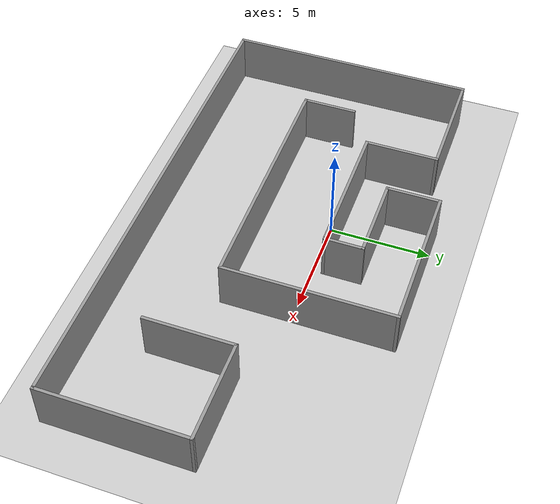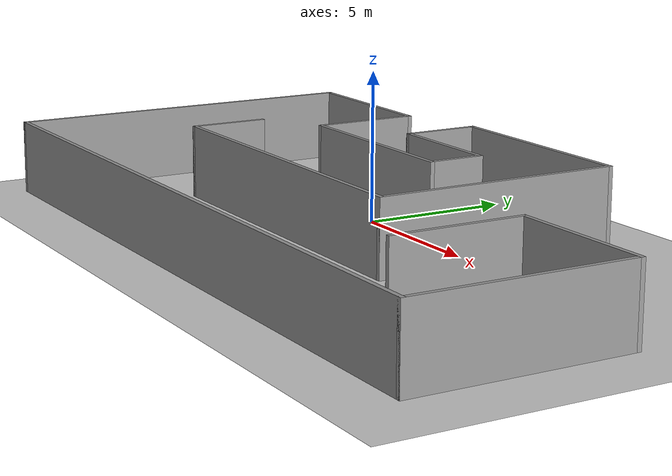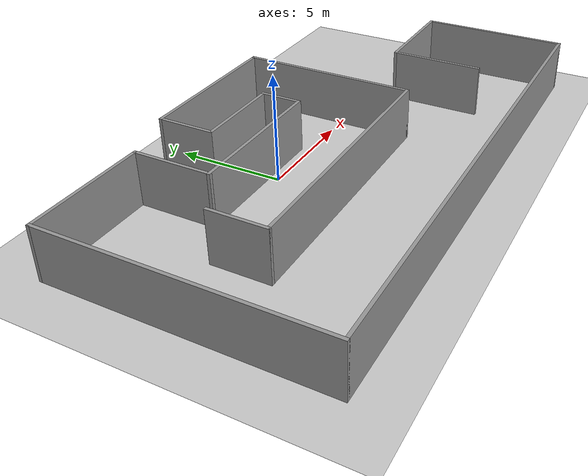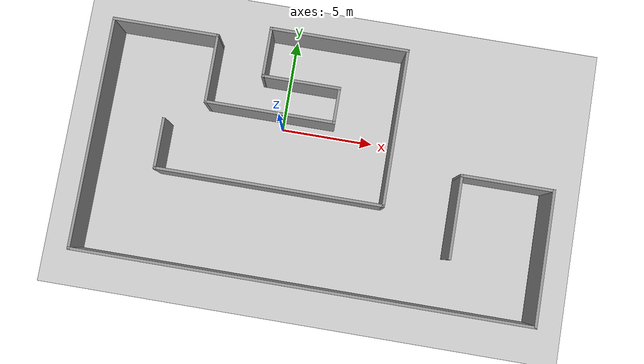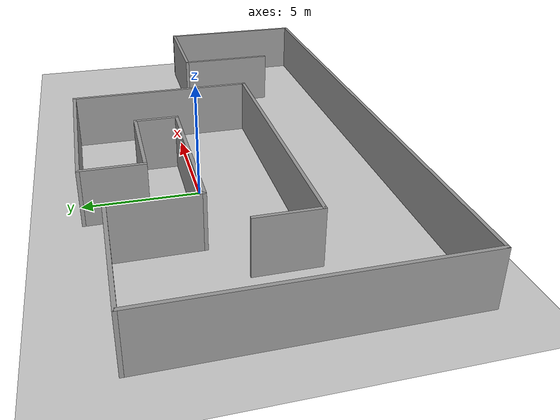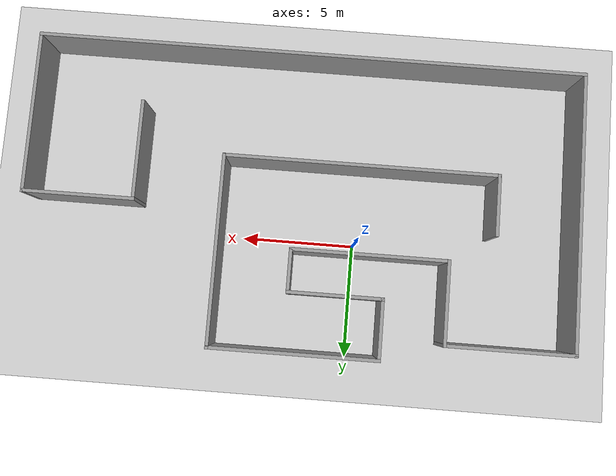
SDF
<sdf version="1.7">
 <world name="default">
  <light name="sun" type="directional">
   <pose>0 0 10 0 -0 0</pose>
   <diffuse>0.8 0.8 0.8 1</diffuse>
   <specular>0.2 0.2 0.2 1</specular>
   <attenuation>
    <range>1000</range>
    <constant>0.9</constant>
    <linear>0.01</linear>
    <quadratic>0.001</quadratic>
   </attenuation>
   <direction>-0.5 0.1 -0.9</direction>
   <spot><inner_angle>0</inner_angle><outer_angle>0</outer_angle><falloff>0</falloff></spot>
  </light>
  <model name="ground_plane">
   <static>1</static>
   <link name="link">
    <collision name="collision">
     <geometry><plane><normal>0 0 1</normal><size>100 100</size></plane></geometry>
     <surface>
      <contact><collide_bitmask>65535</collide_bitmask></contact>
      <friction><ode><mu>100</mu><mu2>50</mu2></ode></friction>
     </surface>
    </collision>
    <visual name="visual">
     <cast_shadows>0</cast_shadows>
     <geometry><plane><normal>0 0 1</normal><size>100 100</size></plane></geometry>
     <material>
      <script><uri>file://media/materials/scripts/gazebo.material</uri><name>Gazebo/Grey</name></script>
     </material>
    </visual>
   </link>
  </model>
  <gravity>0 0 -9.8</gravity>
  <magnetic_field>6e-06 2.3e-05 -4.2e-05</magnetic_field>
  <atmosphere type="adiabatic"/>
  <physics type="ode">
   <max_step_size>0.001</max_step_size>
   <real_time_factor>1</real_time_factor>
   <real_time_update_rate>1000</real_time_update_rate>
  </physics>
  <scene><ambient>0.4 0.4 0.4 1</ambient><background>0.7 0.7 0.7 1</background><shadows>1</shadows></scene>
  <spherical_coordinates>
   <surface_model>EARTH_WGS84</surface_model>
   <latitude_deg>0</latitude_deg>
   <longitude_deg>0</longitude_deg>
   <elevation>0</elevation>
   <heading_deg>0</heading_deg>
  </spherical_coordinates>
  <model name="Untitled">
   <pose>2.455 -1.68 0 0 -0 0</pose>
   <link name="Wall_0">
    <collision name="Wall_0_Collision">
     <geometry><box><size>2.75 0.15 2.5</size></box></geometry>
     <pose>0 0 1.25 0 -0 0</pose>
    </collision>
    <visual name="Wall_0_Visual">
     <pose>0 0 1.25 0 -0 0</pose>
     <geometry><box><size>2.75 0.15 2.5</size></box></geometry>
     <material>
      <script><uri>file://media/materials/scripts/gazebo.material</uri><name>Gazebo/Grey</name></script>
      <ambient>1 1 1 1</ambient>
     </material>
     <meta><layer>0</layer></meta>
    </visual>
    <pose>-8.575 -0.45 0 0 -0 -1.5708</pose>
   </link>
   <link name="Wall_1">
    <collision name="Wall_1_Collision">
     <geometry><box><size>12.25 0.15 2.5</size></box></geometry>
     <pose>0 0 1.25 0 -0 0</pose>
    </collision>
    <visual name="Wall_1_Visual">
     <pose>0 0 1.25 0 -0 0</pose>
     <geometry><box><size>12.25 0.15 2.5</size></box></geometry>
     <material>
      <script><uri>file://media/materials/scripts/gazebo.material</uri><name>Gazebo/Grey</name></script>
      <ambient>1 1 1 1</ambient>
     </material>
     <meta><layer>0</layer></meta>
    </visual>
    <pose>-2.525 -1.75 0 0 -0 0</pose>
   </link>
   <link name="Wall_10">
    <collision name="Wall_10_Collision">
     <geometry><box><size>12.5 0.15 2.5</size></box></geometry>
     <pose>0 0 1.25 0 -0 0</pose>
    </collision>
    <visual name="Wall_10_Visual">
     <pose>0 0 1.25 0 -0 0</pose>
     <geometry><box><size>12.5 0.15 2.5</size></box></geometry>
     <material>
      <script><uri>file://media/materials/scripts/gazebo.material</uri><name>Gazebo/Grey</name></script>
      <ambient>1 1 1 1</ambient>
     </material>
     <meta><layer>0</layer></meta>
    </visual>
    <pose>-12.175 -0.424999 0 0 -0 -1.5708</pose>
   </link>
   <link name="Wall_11">
    <collision name="Wall_11_Collision">
     <geometry><box><size>24.5 0.15 2.5</size></box></geometry>
     <pose>0 0 1.25 0 -0 0</pose>
    </collision>
    <visual name="Wall_11_Visual">
     <pose>0 0 1.25 0 -0 0</pose>
     <geometry><box><size>24.5 0.15 2.5</size></box></geometry>
     <material>
      <script><uri>file://media/materials/scripts/gazebo.material</uri><name>Gazebo/Grey</name></script>
      <ambient>1 1 1 1</ambient>
     </material>
     <meta><layer>0</layer></meta>
    </visual>
    <pose>0 -6.6 0 0 -0 0</pose>
   </link>
   <link name="Wall_12">
    <collision name="Wall_12_Collision">
     <geometry><box><size>7.25 0.15 2.5</size></box></geometry>
     <pose>0 0 1.25 0 -0 0</pose>
    </collision>
    <visual name="Wall_12_Visual">
     <pose>0 0 1.25 0 -0 0</pose>
     <geometry><box><size>7.25 0.15 2.5</size></box></geometry>
     <material>
      <script><uri>file://media/materials/scripts/gazebo.material</uri><name>Gazebo/Grey</name></script>
      <ambient>1 1 1 1</ambient>
     </material>
     <meta><layer>0</layer></meta>
    </visual>
    <pose>12.175 -3.05 0 0 -0 1.5708</pose>
   </link>
   <link name="Wall_13">
    <collision name="Wall_13_Collision">
     <geometry><box><size>5 0.15 2.5</size></box></geometry>
     <pose>0 0 1.25 0 -0 0</pose>
    </collision>
    <visual name="Wall_13_Visual">
     <pose>0 0 1.25 0 -0 0</pose>
     <geometry><box><size>5 0.15 2.5</size></box></geometry>
     <material>
      <script><uri>file://media/materials/scripts/gazebo.material</uri><name>Gazebo/Grey</name></script>
      <ambient>1 1 1 1</ambient>
     </material>
     <meta><layer>0</layer></meta>
    </visual>
    <pose>9.75 0.500001 0 0 -0 3.14159</pose>
   </link>
   <link name="Wall_14">
    <collision name="Wall_14_Collision">
     <geometry><box><size>4.5 0.15 2.5</size></box></geometry>
     <pose>0 0 1.25 0 -0 0</pose>
    </collision>
    <visual name="Wall_14_Visual">
     <pose>0 0 1.25 0 -0 0</pose>
     <geometry><box><size>4.5 0.15 2.5</size></box></geometry>
     <material>
      <script><uri>file://media/materials/scripts/gazebo.material</uri><name>Gazebo/Grey</name></script>
      <ambient>1 1 1 1</ambient>
     </material>
     <meta><layer>0</layer></meta>
    </visual>
    <pose>7.325 -1.675 0 0 -0 -1.5708</pose>
   </link>
   <link name="Wall_2">
    <collision name="Wall_2_Collision">
     <geometry><box><size>8.5 0.15 2.5</size></box></geometry>
     <pose>0 0 1.25 0 -0 0</pose>
    </collision>
    <visual name="Wall_2_Visual">
     <pose>0 0 1.25 0 -0 0</pose>
     <geometry><box><size>8.5 0.15 2.5</size></box></geometry>
     <material>
      <script><uri>file://media/materials/scripts/gazebo.material</uri><name>Gazebo/Grey</name></script>
      <ambient>1 1 1 1</ambient>
     </material>
     <meta><layer>0</layer></meta>
    </visual>
    <pose>3.525 2.425 0 0 -0 1.5708</pose>
   </link>
   <link name="Wall_3">
    <collision name="Wall_3_Collision">
     <geometry><box><size>7.5 0.15 2.5</size></box></geometry>
     <pose>0 0 1.25 0 -0 0</pose>
    </collision>
    <visual name="Wall_3_Visual">
     <pose>0 0 1.25 0 -0 0</pose>
     <geometry><box><size>7.5 0.15 2.5</size></box></geometry>
     <material>
      <script><uri>file://media/materials/scripts/gazebo.material</uri><name>Gazebo/Grey</name></script>
      <ambient>1 1 1 1</ambient>
     </material>
     <meta><layer>0</layer></meta>
    </visual>
    <pose>-0.15 6.6 0 0 -0 3.14159</pose>
   </link>
   <link name="Wall_4">
    <collision name="Wall_4_Collision">
     <geometry><box><size>2.75 0.15 2.5</size></box></geometry>
     <pose>0 0 1.25 0 -0 0</pose>
    </collision>
    <visual name="Wall_4_Visual">
     <pose>0 0 1.25 0 -0 0</pose>
     <geometry><box><size>2.75 0.15 2.5</size></box></geometry>
     <material>
      <script><uri>file://media/materials/scripts/gazebo.material</uri><name>Gazebo/Grey</name></script>
      <ambient>1 1 1 1</ambient>
     </material>
     <meta><layer>0</layer></meta>
    </visual>
    <pose>-3.825 5.3 0 0 -0 -1.5708</pose>
   </link>
   <link name="Wall_5">
    <collision name="Wall_5_Collision">
     <geometry><box><size>4.25 0.15 2.5</size></box></geometry>
     <pose>0 0 1.25 0 -0 0</pose>
    </collision>
    <visual name="Wall_5_Visual">
     <pose>0 0 1.25 0 -0 0</pose>
     <geometry><box><size>4.25 0.15 2.5</size></box></geometry>
     <material>
      <script><uri>file://media/materials/scripts/gazebo.material</uri><name>Gazebo/Grey</name></script>
      <ambient>1 1 1 1</ambient>
     </material>
     <meta><layer>0</layer></meta>
    </visual>
    <pose>-1.775 4 0 0 -0 0</pose>
   </link>
   <link name="Wall_6">
    <collision name="Wall_6_Collision">
     <geometry><box><size>2 0.15 2.5</size></box></geometry>
     <pose>0 0 1.25 0 -0 0</pose>
    </collision>
    <visual name="Wall_6_Visual">
     <pose>0 0 1.25 0 -0 0</pose>
     <geometry><box><size>2 0.15 2.5</size></box></geometry>
     <material>
      <script><uri>file://media/materials/scripts/gazebo.material</uri><name>Gazebo/Grey</name></script>
      <ambient>1 1 1 1</ambient>
     </material>
     <meta><layer>0</layer></meta>
    </visual>
    <pose>0.275 3.075 0 0 -0 -1.5708</pose>
   </link>
   <link name="Wall_7">
    <collision name="Wall_7_Collision">
     <geometry><box><size>7 0.15 2.5</size></box></geometry>
     <pose>0 0 1.25 0 -0 0</pose>
    </collision>
    <visual name="Wall_7_Visual">
     <pose>0 0 1.25 0 -0 0</pose>
     <geometry><box><size>7 0.15 2.5</size></box></geometry>
     <material>
      <script><uri>file://media/materials/scripts/gazebo.material</uri><name>Gazebo/Grey</name></script>
      <ambient>1 1 1 1</ambient>
     </material>
     <meta><layer>0</layer></meta>
    </visual>
    <pose>-3.15 2.15 0 0 -0 3.14159</pose>
   </link>
   <link name="Wall_8">
    <collision name="Wall_8_Collision">
     <geometry><box><size>3.75 0.15 2.5</size></box></geometry>
     <pose>0 0 1.25 0 -0 0</pose>
    </collision>
    <visual name="Wall_8_Visual">
     <pose>0 0 1.25 0 -0 0</pose>
     <geometry><box><size>3.75 0.15 2.5</size></box></geometry>
     <material>
      <script><uri>file://media/materials/scripts/gazebo.material</uri><name>Gazebo/Grey</name></script>
      <ambient>1 1 1 1</ambient>
     </material>
     <meta><layer>0</layer></meta>
    </visual>
    <pose>-6.575 3.95 0 0 -0 1.5708</pose>
   </link>
   <link name="Wall_9">
    <collision name="Wall_9_Collision">
     <geometry><box><size>5.75 0.15 2.5</size></box></geometry>
     <pose>0 0 1.25 0 -0 0</pose>
    </collision>
    <visual name="Wall_9_Visual">
     <pose>0 0 1.25 0 -0 0</pose>
     <geometry><box><size>5.75 0.15 2.5</size></box></geometry>
     <material>
      <script><uri>file://media/materials/scripts/gazebo.material</uri><name>Gazebo/Grey</name></script>
      <ambient>1 1 1 1</ambient>
     </material>
     <meta><layer>0</layer></meta>
    </visual>
    <pose>-9.375 5.75 0 0 -0 3.14159</pose>
   </link>
   <static>1</static>
  </model>
 </world>
</sdf>
